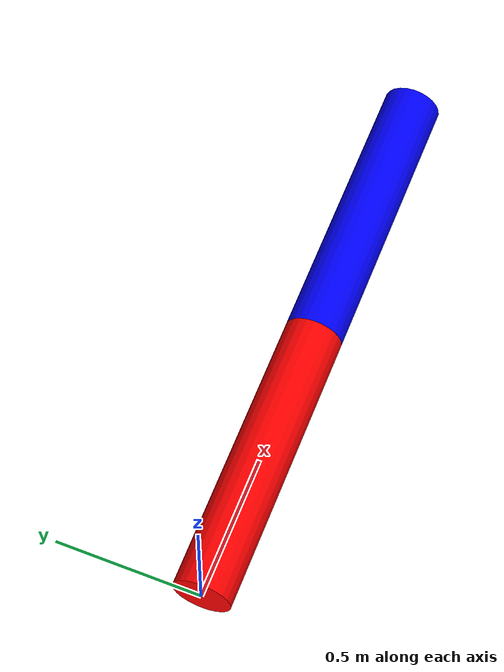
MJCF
<mujoco model="simple two link manipulator">

  <option gravity="0 0 -9.81"/>
  <compiler angle="radian"/>

  <worldbody>
    <light name="top" pos="0 0 2" mode="trackcom"/>
    <body name="first_link" pos="0.5 0.0 0.0">
      <inertial mass="61.65" pos="0.0 0.0 0.0" diaginertia="0.07707 5.1763 5.1763"/>
      <joint name="first_joint" type="hinge" pos="-0.5 0.0 0.0" axis="0.0 0.0 1.0"/>
      <geom name="first_link_geom" type="cylinder" pos="0.0 0.0 0.0" euler="0.0 -1.57 0.0" size="0.1 0.5" rgba="1.0 0.0 0.0 1.0"/>
      <body name="second_link" pos="1.0 0.0 0.0">
        <inertial mass="61.65" pos="0.0 0.0 0.0" diaginertia="0.07707 5.1763 5.1763"/>
        <joint name="second_joint" type="hinge" pos="-0.5 0.0 0.0" axis="0.0 0.0 1.0"/>
        <geom name="second_link_geom" type="cylinder" pos="0.0 0.0 0.0" euler="0.0 -1.57 0.0" size="0.1 0.5" rgba="0.0 0.0 1.0 1.0"/>
      </body>
    </body>
  </worldbody>

  <actuator>
    <general name="first_actuator" ctrlrange="-500.0 500.0" joint="first_joint"/>
    <general name="second_actuator" ctrlrange="-500.0 500.0" joint="second_joint"/>
  </actuator>

</mujoco>
